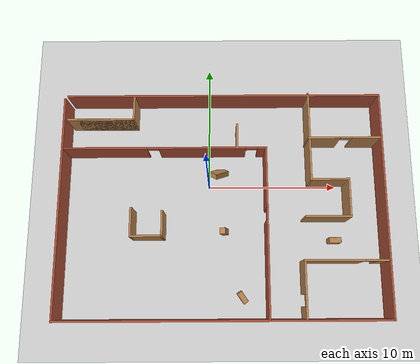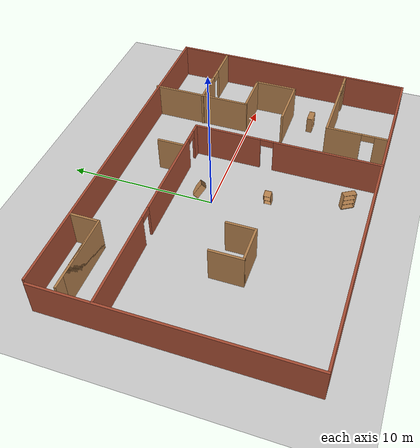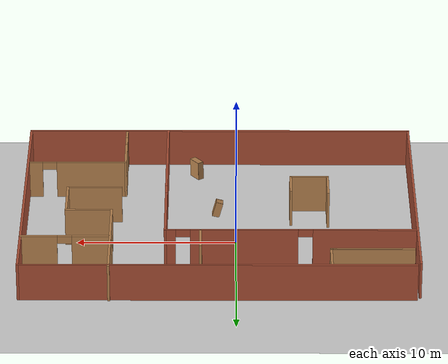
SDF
<sdf version="1.7">
 <world name="default">
  <model name="ground_plane">
   <static>1</static>
   <link name="link">
    <collision name="collision">
     <geometry><plane><normal>0 0 1</normal><size>100 100</size></plane></geometry>
     <surface><friction><ode><mu>100</mu><mu2>50</mu2></ode></friction></surface>
    </collision>
    <visual name="visual">
     <cast_shadows>0</cast_shadows>
     <geometry><plane><normal>0 0 1</normal><size>100 100</size></plane></geometry>
     <material>
      <script><uri>file://media/materials/scripts/gazebo.material</uri><name>Gazebo/Grey</name></script>
     </material>
    </visual>
   </link>
  </model>
  <model name="ego_test_world2">
   <pose>1.0325 -1.59764 0 0 -0 0</pose>
   <link name="Wall_0">
    <collision name="Wall_0_Collision">
     <geometry><box><size>17 0.15 2.5</size></box></geometry>
     <pose>0 0 1.25 0 -0 0</pose>
    </collision>
    <visual name="Wall_0_Visual">
     <pose>0 0 1.25 0 -0 0</pose>
     <geometry><box><size>17 0.15 2.5</size></box></geometry>
     <material>
      <script><uri>file://media/materials/scripts/gazebo.material</uri><name>Gazebo/Bricks</name></script>
      <ambient>1 1 1 1</ambient>
     </material>
     <meta><layer>0</layer></meta>
    </visual>
    <pose>-12.3 -0.180181 0 0 -0 -1.5708</pose>
   </link>
   <link name="Wall_1">
    <collision name="Wall_1_Collision">
     <geometry><box><size>24.75 0.15 2.5</size></box></geometry>
     <pose>0 0 1.25 0 -0 0</pose>
    </collision>
    <visual name="Wall_1_Visual">
     <pose>0 0 1.25 0 -0 0</pose>
     <geometry><box><size>24.75 0.15 2.5</size></box></geometry>
     <material>
      <script><uri>file://media/materials/scripts/gazebo.material</uri><name>Gazebo/Bricks</name></script>
      <ambient>1 1 1 1</ambient>
     </material>
     <meta><layer>0</layer></meta>
    </visual>
    <pose>0 -8.60518 0 0 -0 0</pose>
   </link>
   <link name="Wall_10">
    <pose>-9.42331 6.57633 0 0 -0 0</pose>
    <visual name="Wall_10_Visual_0">
     <pose>0 0 1.25 0 -0 0</pose>
     <geometry><box><size>5.25 0.15 2.5</size></box></geometry>
     <material>
      <script><uri>file://media/materials/scripts/gazebo.material</uri><name>Gazebo/Wood</name></script>
      <ambient>1 1 1 1</ambient>
     </material>
     <meta><layer>0</layer></meta>
    </visual>
    <collision name="Wall_10_Collision_0">
     <geometry><box><size>5.25 0.15 2.5</size></box></geometry>
     <pose>0 0 1.25 0 -0 0</pose>
    </collision>
    <visual name="Wall_10_Visual_1">
     <pose>0.402421 0 1.25 0 -0 0</pose>
     <geometry><box><size>4.44516 0.15 2.5</size></box></geometry>
     <material>
      <script><uri>file://media/materials/scripts/gazebo.material</uri><name>Gazebo/Wood</name></script>
      <ambient>1 1 1 1</ambient>
     </material>
     <meta><layer>0</layer></meta>
    </visual>
    <collision name="Wall_10_Collision_1">
     <geometry><box><size>4.44516 0.15 2.5</size></box></geometry>
     <pose>0.402421 0 1.25 0 -0 0</pose>
    </collision>
   </link>
   <link name="Wall_11">
    <collision name="Wall_11_Collision">
     <geometry><box><size>2 0.15 2.5</size></box></geometry>
     <pose>0 0 1.25 0 -0 0</pose>
    </collision>
    <visual name="Wall_11_Visual">
     <pose>0 0 1.25 0 -0 0</pose>
     <geometry><box><size>2 0.15 2.5</size></box></geometry>
     <material>
      <script><uri>file://media/materials/scripts/gazebo.material</uri><name>Gazebo/Wood</name></script>
      <ambient>1 1 1 1</ambient>
     </material>
     <meta><layer>0</layer></meta>
    </visual>
    <pose>-6.87331 7.50133 0 0 -0 1.5708</pose>
   </link>
   <link name="Wall_13">
    <collision name="Wall_13_Collision">
     <geometry><box><size>7 0.15 2.5</size></box></geometry>
     <pose>0 0 1.25 0 -0 0</pose>
    </collision>
    <visual name="Wall_13_Visual">
     <pose>0 0 1.25 0 -0 0</pose>
     <geometry><box><size>7 0.15 2.5</size></box></geometry>
     <material>
      <script><uri>file://media/materials/scripts/gazebo.material</uri><name>Gazebo/Wood</name></script>
      <ambient>1 1 1 1</ambient>
     </material>
     <meta><layer>0</layer></meta>
    </visual>
    <pose>6.75855 5.18018 0 0 -0 -1.5708</pose>
   </link>
   <link name="Wall_14">
    <collision name="Wall_14_Collision">
     <geometry><box><size>3 0.15 2.5</size></box></geometry>
     <pose>0 0 1.25 0 -0 0</pose>
    </collision>
    <visual name="Wall_14_Visual">
     <pose>0 0 1.25 0 -0 0</pose>
     <geometry><box><size>3 0.15 2.5</size></box></geometry>
     <material>
      <script><uri>file://media/materials/scripts/gazebo.material</uri><name>Gazebo/Wood</name></script>
      <ambient>1 1 1 1</ambient>
     </material>
     <meta><layer>0</layer></meta>
    </visual>
    <pose>8.18355 1.75518 0 0 -0 0</pose>
   </link>
   <link name="Wall_15">
    <collision name="Wall_15_Collision">
     <geometry><box><size>3 0.15 2.5</size></box></geometry>
     <pose>0 0 1.25 0 -0 0</pose>
    </collision>
    <visual name="Wall_15_Visual">
     <pose>0 0 1.25 0 -0 0</pose>
     <geometry><box><size>3 0.15 2.5</size></box></geometry>
     <material>
      <script><uri>file://media/materials/scripts/gazebo.material</uri><name>Gazebo/Wood</name></script>
      <ambient>1 1 1 1</ambient>
     </material>
     <meta><layer>0</layer></meta>
    </visual>
    <pose>9.60855 0.33018 0 0 -0 -1.5708</pose>
   </link>
   <link name="Wall_19">
    <pose>9.48859 5.03721 0 0 -0 0</pose>
    <visual name="Wall_19_Visual_0">
     <pose>-1.61957 0 1.25 0 -0 0</pose>
     <geometry><box><size>2.51086 0.15 2.5</size></box></geometry>
     <material>
      <script><uri>file://media/materials/scripts/gazebo.material</uri><name>Gazebo/Wood</name></script>
      <ambient>1 1 1 1</ambient>
     </material>
     <meta><layer>0</layer></meta>
    </visual>
    <collision name="Wall_19_Collision_0">
     <geometry><box><size>2.51086 0.15 2.5</size></box></geometry>
     <pose>-1.61957 0 1.25 0 -0 0</pose>
    </collision>
    <visual name="Wall_19_Visual_1">
     <pose>1.70543 0 1.25 0 -0 0</pose>
     <geometry><box><size>2.33914 0.15 2.5</size></box></geometry>
     <material>
      <script><uri>file://media/materials/scripts/gazebo.material</uri><name>Gazebo/Wood</name></script>
      <ambient>1 1 1 1</ambient>
     </material>
     <meta><layer>0</layer></meta>
    </visual>
    <collision name="Wall_19_Collision_1">
     <geometry><box><size>2.33914 0.15 2.5</size></box></geometry>
     <pose>1.70543 0 1.25 0 -0 0</pose>
    </collision>
    <visual name="Wall_19_Visual_2">
     <pose>0.08586 0 2.25 0 -0 0</pose>
     <geometry><box><size>0.9 0.15 0.5</size></box></geometry>
     <material>
      <script><uri>file://media/materials/scripts/gazebo.material</uri><name>Gazebo/Wood</name></script>
      <ambient>1 1 1 1</ambient>
     </material>
     <meta><layer>0</layer></meta>
    </visual>
    <collision name="Wall_19_Collision_2">
     <geometry><box><size>0.9 0.15 0.5</size></box></geometry>
     <pose>0.08586 0 2.25 0 -0 0</pose>
    </collision>
   </link>
   <link name="Wall_2">
    <collision name="Wall_2_Collision">
     <geometry><box><size>17.25 0.15 2.5</size></box></geometry>
     <pose>0 0 1.25 0 -0 0</pose>
    </collision>
    <visual name="Wall_2_Visual">
     <pose>0 0 1.25 0 -0 0</pose>
     <geometry><box><size>17.25 0.15 2.5</size></box></geometry>
     <material>
      <script><uri>file://media/materials/scripts/gazebo.material</uri><name>Gazebo/Bricks</name></script>
      <ambient>1 1 1 1</ambient>
     </material>
     <meta><layer>0</layer></meta>
    </visual>
    <pose>12.3 -0.055181 0 0 -0 1.5708</pose>
   </link>
   <link name="Wall_21">
    <collision name="Wall_21_Collision">
     <geometry><box><size>3.5 0.15 2.5</size></box></geometry>
     <pose>0 0 1.25 0 -0 0</pose>
    </collision>
    <visual name="Wall_21_Visual">
     <pose>0 0 1.25 0 -0 0</pose>
     <geometry><box><size>3.5 0.15 2.5</size></box></geometry>
     <material>
      <script><uri>file://media/materials/scripts/gazebo.material</uri><name>Gazebo/Wood</name></script>
      <ambient>1 1 1 1</ambient>
     </material>
     <meta><layer>0</layer></meta>
    </visual>
    <pose>7.93355 -1.09482 0 0 -0 3.14159</pose>
   </link>
   <link name="Wall_23">
    <pose>6.04145 -6.39763 0 0 -0 1.5708</pose>
    <visual name="Wall_23_Visual_0">
     <pose>-1.6916 0 1.25 0 -0 0</pose>
     <geometry><box><size>0.866794 0.15 2.5</size></box></geometry>
     <material>
      <script><uri>file://media/materials/scripts/gazebo.material</uri><name>Gazebo/Wood</name></script>
      <ambient>1 1 1 1</ambient>
     </material>
     <meta><layer>0</layer></meta>
    </visual>
    <collision name="Wall_23_Collision_0">
     <geometry><box><size>0.866794 0.15 2.5</size></box></geometry>
     <pose>-1.6916 0 1.25 0 -0 0</pose>
    </collision>
    <visual name="Wall_23_Visual_1">
     <pose>0.883397 0 1.25 0 -0 0</pose>
     <geometry><box><size>2.48321 0.15 2.5</size></box></geometry>
     <material>
      <script><uri>file://media/materials/scripts/gazebo.material</uri><name>Gazebo/Wood</name></script>
      <ambient>1 1 1 1</ambient>
     </material>
     <meta><layer>0</layer></meta>
    </visual>
    <collision name="Wall_23_Collision_1">
     <geometry><box><size>2.48321 0.15 2.5</size></box></geometry>
     <pose>0.883397 0 1.25 0 -0 0</pose>
    </collision>
    <visual name="Wall_23_Visual_2">
     <pose>-0.808206 0 2.25 0 -0 0</pose>
     <geometry><box><size>0.9 0.15 0.5</size></box></geometry>
     <material>
      <script><uri>file://media/materials/scripts/gazebo.material</uri><name>Gazebo/Wood</name></script>
      <ambient>1 1 1 1</ambient>
     </material>
     <meta><layer>0</layer></meta>
    </visual>
    <collision name="Wall_23_Collision_2">
     <geometry><box><size>0.9 0.15 0.5</size></box></geometry>
     <pose>-0.808206 0 2.25 0 -0 0</pose>
    </collision>
   </link>
   <link name="Wall_24">
    <pose>9.09145 -4.34763 0 0 -0 0</pose>
    <visual name="Wall_24_Visual_0">
     <pose>-0.872636 0 1.25 0 -0 0</pose>
     <geometry><box><size>4.50473 0.15 2.5</size></box></geometry>
     <material>
      <script><uri>file://media/materials/scripts/gazebo.material</uri><name>Gazebo/Wood</name></script>
      <ambient>1 1 1 1</ambient>
     </material>
     <meta><layer>0</layer></meta>
    </visual>
    <collision name="Wall_24_Collision_0">
     <geometry><box><size>4.50473 0.15 2.5</size></box></geometry>
     <pose>-0.872636 0 1.25 0 -0 0</pose>
    </collision>
    <visual name="Wall_24_Visual_1">
     <pose>2.70236 0 1.25 0 -0 0</pose>
     <geometry><box><size>0.845273 0.15 2.5</size></box></geometry>
     <material>
      <script><uri>file://media/materials/scripts/gazebo.material</uri><name>Gazebo/Wood</name></script>
      <ambient>1 1 1 1</ambient>
     </material>
     <meta><layer>0</layer></meta>
    </visual>
    <collision name="Wall_24_Collision_1">
     <geometry><box><size>0.845273 0.15 2.5</size></box></geometry>
     <pose>2.70236 0 1.25 0 -0 0</pose>
    </collision>
    <visual name="Wall_24_Visual_2">
     <pose>1.82973 0 2.25 0 -0 0</pose>
     <geometry><box><size>0.9 0.15 0.5</size></box></geometry>
     <material>
      <script><uri>file://media/materials/scripts/gazebo.material</uri><name>Gazebo/Wood</name></script>
      <ambient>1 1 1 1</ambient>
     </material>
     <meta><layer>0</layer></meta>
    </visual>
    <collision name="Wall_24_Collision_2">
     <geometry><box><size>0.9 0.15 0.5</size></box></geometry>
     <pose>1.82973 0 2.25 0 -0 0</pose>
    </collision>
   </link>
   <link name="Wall_26">
    <collision name="Wall_26_Collision">
     <geometry><box><size>2 0.15 2.5</size></box></geometry>
     <pose>0 0 1.25 0 -0 0</pose>
    </collision>
    <visual name="Wall_26_Visual">
     <pose>0 0 1.25 0 -0 0</pose>
     <geometry><box><size>2 0.15 2.5</size></box></geometry>
     <material>
      <script><uri>file://media/materials/scripts/gazebo.material</uri><name>Gazebo/Wood</name></script>
      <ambient>1 1 1 1</ambient>
     </material>
     <meta><layer>0</layer></meta>
    </visual>
    <pose>1.16173 5.19264 0 0 -0 1.5708</pose>
   </link>
   <link name="Wall_28">
    <collision name="Wall_28_Collision">
     <geometry><box><size>2.25 0.15 2.5</size></box></geometry>
     <pose>0 0 1.25 0 -0 0</pose>
    </collision>
    <visual name="Wall_28_Visual">
     <pose>0 0 1.25 0 -0 0</pose>
     <geometry><box><size>2.25 0.15 2.5</size></box></geometry>
     <material>
      <script><uri>file://media/materials/scripts/gazebo.material</uri><name>Gazebo/Wood</name></script>
      <ambient>1 1 1 1</ambient>
     </material>
     <meta><layer>0</layer></meta>
    </visual>
    <pose>-6.8837 -1.4522 0 0 -0 -1.5708</pose>
   </link>
   <link name="Wall_29">
    <collision name="Wall_29_Collision">
     <geometry><box><size>2.5 0.15 2.5</size></box></geometry>
     <pose>0 0 1.25 0 -0 0</pose>
    </collision>
    <visual name="Wall_29_Visual">
     <pose>0 0 1.25 0 -0 0</pose>
     <geometry><box><size>2.5 0.15 2.5</size></box></geometry>
     <material>
      <script><uri>file://media/materials/scripts/gazebo.material</uri><name>Gazebo/Wood</name></script>
      <ambient>1 1 1 1</ambient>
     </material>
     <meta><layer>0</layer></meta>
    </visual>
    <pose>-5.7087 -2.5022 0 0 -0 0</pose>
   </link>
   <link name="Wall_3">
    <collision name="Wall_3_Collision">
     <geometry><box><size>24.5 0.15 2.5</size></box></geometry>
     <pose>0 0 1.25 0 -0 0</pose>
    </collision>
    <visual name="Wall_3_Visual">
     <pose>0 0 1.25 0 -0 0</pose>
     <geometry><box><size>24.5 0.15 2.5</size></box></geometry>
     <material>
      <script><uri>file://media/materials/scripts/gazebo.material</uri><name>Gazebo/Bricks</name></script>
      <ambient>1 1 1 1</ambient>
     </material>
     <meta><layer>0</layer></meta>
    </visual>
    <pose>0.125 8.49482 0 0 -0 3.14159</pose>
   </link>
   <link name="Wall_30">
    <collision name="Wall_30_Collision">
     <geometry><box><size>2 0.15 2.5</size></box></geometry>
     <pose>0 0 1.25 0 -0 0</pose>
    </collision>
    <visual name="Wall_30_Visual">
     <pose>0 0 1.25 0 -0 0</pose>
     <geometry><box><size>2 0.15 2.5</size></box></geometry>
     <material>
      <script><uri>file://media/materials/scripts/gazebo.material</uri><name>Gazebo/Wood</name></script>
      <ambient>1 1 1 1</ambient>
     </material>
     <meta><layer>0</layer></meta>
    </visual>
    <pose>-4.5337 -1.5772 0 0 -0 1.5708</pose>
   </link>
   <link name="Wall_7">
    <pose>-4.43566 4.25016 0 0 -0 0</pose>
    <visual name="Wall_7_Visual_0">
     <pose>-4.61696 0 1.25 0 -0 0</pose>
     <geometry><box><size>6.51609 0.15 2.5</size></box></geometry>
     <material>
      <script><uri>file://media/materials/scripts/gazebo.material</uri><name>Gazebo/Bricks</name></script>
      <ambient>1 1 1 1</ambient>
     </material>
     <meta><layer>0</layer></meta>
    </visual>
    <collision name="Wall_7_Collision_0">
     <geometry><box><size>6.51609 0.15 2.5</size></box></geometry>
     <pose>-4.61696 0 1.25 0 -0 0</pose>
    </collision>
    <visual name="Wall_7_Visual_1">
     <pose>2.89517 0 1.25 0 -0 0</pose>
     <geometry><box><size>6.70818 0.15 2.5</size></box></geometry>
     <material>
      <script><uri>file://media/materials/scripts/gazebo.material</uri><name>Gazebo/Bricks</name></script>
      <ambient>1 1 1 1</ambient>
     </material>
     <meta><layer>0</layer></meta>
    </visual>
    <collision name="Wall_7_Collision_1">
     <geometry><box><size>6.70818 0.15 2.5</size></box></geometry>
     <pose>2.89517 0 1.25 0 -0 0</pose>
    </collision>
    <visual name="Wall_7_Visual_2">
     <pose>7.51213 0 1.25 0 -0 0</pose>
     <geometry><box><size>0.725738 0.15 2.5</size></box></geometry>
     <material>
      <script><uri>file://media/materials/scripts/gazebo.material</uri><name>Gazebo/Bricks</name></script>
      <ambient>1 1 1 1</ambient>
     </material>
     <meta><layer>0</layer></meta>
    </visual>
    <collision name="Wall_7_Collision_2">
     <geometry><box><size>0.725738 0.15 2.5</size></box></geometry>
     <pose>7.51213 0 1.25 0 -0 0</pose>
    </collision>
    <visual name="Wall_7_Visual_3">
     <pose>-0.908915 0 2.25 0 -0 0</pose>
     <geometry><box><size>0.9 0.15 0.5</size></box></geometry>
     <material>
      <script><uri>file://media/materials/scripts/gazebo.material</uri><name>Gazebo/Bricks</name></script>
      <ambient>1 1 1 1</ambient>
     </material>
     <meta><layer>0</layer></meta>
    </visual>
    <collision name="Wall_7_Collision_3">
     <geometry><box><size>0.9 0.15 0.5</size></box></geometry>
     <pose>-0.908915 0 2.25 0 -0 0</pose>
    </collision>
    <visual name="Wall_7_Visual_4">
     <pose>6.69926 0 2.25 0 -0 0</pose>
     <geometry><box><size>0.9 0.15 0.5</size></box></geometry>
     <material>
      <script><uri>file://media/materials/scripts/gazebo.material</uri><name>Gazebo/Bricks</name></script>
      <ambient>1 1 1 1</ambient>
     </material>
     <meta><layer>0</layer></meta>
    </visual>
    <collision name="Wall_7_Collision_4">
     <geometry><box><size>0.9 0.15 0.5</size></box></geometry>
     <pose>6.69926 0 2.25 0 -0 0</pose>
    </collision>
   </link>
   <link name="Wall_8">
    <pose>3.36434 -2.17484 0 0 -0 -1.5708</pose>
    <visual name="Wall_8_Visual_0">
     <pose>-4.1427 0 1.25 0 -0 0</pose>
     <geometry><box><size>4.71461 0.15 2.5</size></box></geometry>
     <material>
      <script><uri>file://media/materials/scripts/gazebo.material</uri><name>Gazebo/Bricks</name></script>
      <ambient>1 1 1 1</ambient>
     </material>
     <meta><layer>0</layer></meta>
    </visual>
    <collision name="Wall_8_Collision_0">
     <geometry><box><size>4.71461 0.15 2.5</size></box></geometry>
     <pose>-4.1427 0 1.25 0 -0 0</pose>
    </collision>
    <visual name="Wall_8_Visual_1">
     <pose>2.8073 0 1.25 0 -0 0</pose>
     <geometry><box><size>7.38539 0.15 2.5</size></box></geometry>
     <material>
      <script><uri>file://media/materials/scripts/gazebo.material</uri><name>Gazebo/Bricks</name></script>
      <ambient>1 1 1 1</ambient>
     </material>
     <meta><layer>0</layer></meta>
    </visual>
    <collision name="Wall_8_Collision_1">
     <geometry><box><size>7.38539 0.15 2.5</size></box></geometry>
     <pose>2.8073 0 1.25 0 -0 0</pose>
    </collision>
    <visual name="Wall_8_Visual_2">
     <pose>-1.33539 0 2.25 0 -0 0</pose>
     <geometry><box><size>0.9 0.15 0.5</size></box></geometry>
     <material>
      <script><uri>file://media/materials/scripts/gazebo.material</uri><name>Gazebo/Bricks</name></script>
      <ambient>1 1 1 1</ambient>
     </material>
     <meta><layer>0</layer></meta>
    </visual>
    <collision name="Wall_8_Collision_2">
     <geometry><box><size>0.9 0.15 0.5</size></box></geometry>
     <pose>-1.33539 0 2.25 0 -0 0</pose>
    </collision>
   </link>
   <static>1</static>
  </model>
  <model name="cabinet_2">
   <static>1</static>
   <link name="cabinet_bottom_plate">
    <inertial>
     <pose>0 0 -1 0 -0 0</pose>
     <inertia><ixx>2.05</ixx><ixy>0</ixy><ixz>0</ixz><iyy>2.05</iyy><iyz>0</iyz><izz>2.05</izz></inertia>
     <mass>25</mass>
    </inertial>
    <collision name="cabinet_bottom_plate_geom">
     <pose>0 0 0.01 0 -0 0</pose>
     <geometry><box><size>0.45 0.45 0.02</size></box></geometry>
    </collision>
    <visual name="cabinet_bottom_plate_geom_visual">
     <pose>0 0 0.01 0 -0 0</pose>
     <geometry><box><size>0.45 0.45 0.02</size></box></geometry>
     <material>
      <script><uri>file://media/materials/scripts/gazebo.material</uri><name>Gazebo/Wood</name></script>
     </material>
    </visual>
    <collision name="cabinet_bottom_plate_geom_cabinet_back_plate">
     <pose>0.235 0 0.51 0 -0 0</pose>
     <geometry><box><size>0.02 0.45 1.02</size></box></geometry>
    </collision>
    <visual name="cabinet_bottom_plate_geom_cabinet_back_plate_visual">
     <pose>0.235 0 0.51 0 -0 0</pose>
     <geometry><box><size>0.02 0.45 1.02</size></box></geometry>
     <material>
      <script><uri>file://media/materials/scripts/gazebo.material</uri><name>Gazebo/Wood</name></script>
     </material>
    </visual>
    <collision name="cabinet_bottom_plate_geom_cabinet_left_plate">
     <pose>0 0.235 0.51 0 -0 0</pose>
     <geometry><box><size>0.45 0.02 1.02</size></box></geometry>
    </collision>
    <visual name="cabinet_bottom_plate_geom_cabinet_left_plate_visual">
     <pose>0 0.235 0.51 0 -0 0</pose>
     <geometry><box><size>0.45 0.02 1.02</size></box></geometry>
     <material>
      <script><uri>file://media/materials/scripts/gazebo.material</uri><name>Gazebo/Wood</name></script>
     </material>
    </visual>
    <collision name="cabinet_bottom_plate_geom_cabinet_middle_plate">
     <pose>0 0 0.51 0 -0 0</pose>
     <geometry><box><size>0.45 0.45 0.02</size></box></geometry>
    </collision>
    <visual name="cabinet_bottom_plate_geom_cabinet_middle_plate_visual">
     <pose>0 0 0.51 0 -0 0</pose>
     <geometry><box><size>0.45 0.45 0.02</size></box></geometry>
     <material>
      <script><uri>file://media/materials/scripts/gazebo.material</uri><name>Gazebo/Wood</name></script>
     </material>
    </visual>
    <collision name="cabinet_bottom_plate_geom_cabinet_right_plate">
     <pose>0 -0.235 0.51 0 -0 0</pose>
     <geometry><box><size>0.45 0.02 1.02</size></box></geometry>
    </collision>
    <visual name="cabinet_bottom_plate_geom_cabinet_right_plate_visual">
     <pose>0 -0.235 0.51 0 -0 0</pose>
     <geometry><box><size>0.45 0.02 1.02</size></box></geometry>
     <material>
      <script><uri>file://media/materials/scripts/gazebo.material</uri><name>Gazebo/Wood</name></script>
     </material>
    </visual>
    <collision name="cabinet_bottom_plate_geom_cabinet_top_plate">
     <pose>0 0 1.01 0 -0 0</pose>
     <geometry><box><size>0.45 0.45 0.02</size></box></geometry>
    </collision>
    <visual name="cabinet_bottom_plate_geom_cabinet_top_plate_visual">
     <pose>0 0 1.01 0 -0 0</pose>
     <geometry><box><size>0.45 0.45 0.02</size></box></geometry>
     <material>
      <script><uri>file://media/materials/scripts/gazebo.material</uri><name>Gazebo/Wood</name></script>
     </material>
    </visual>
   </link>
   <pose>1.27456 -3.53716 0 0 -0.260529 0</pose>
  </model>
  <model name="bookshelf_0">
   <static>1</static>
   <link name="link">
    <inertial><mass>1</mass></inertial>
    <collision name="back">
     <pose>0 0.005 0.6 0 -0 0</pose>
     <geometry><box><size>0.9 0.01 1.2</size></box></geometry>
    </collision>
    <visual name="visual1">
     <pose>0 0.005 0.6 0 -0 0</pose>
     <geometry><box><size>0.9 0.01 1.2</size></box></geometry>
     <material>
      <script><uri>file://media/materials/scripts/gazebo.material</uri><name>Gazebo/Wood</name></script>
     </material>
    </visual>
    <collision name="left_side">
     <pose>0.45 -0.195 0.6 0 -0 0</pose>
     <geometry><box><size>0.02 0.4 1.2</size></box></geometry>
    </collision>
    <visual name="visual2">
     <pose>0.45 -0.195 0.6 0 -0 0</pose>
     <geometry><box><size>0.02 0.4 1.2</size></box></geometry>
     <material>
      <script><uri>file://media/materials/scripts/gazebo.material</uri><name>Gazebo/Wood</name></script>
     </material>
    </visual>
    <collision name="right_side">
     <pose>-0.45 -0.195 0.6 0 -0 0</pose>
     <geometry><box><size>0.02 0.4 1.2</size></box></geometry>
    </collision>
    <visual name="visual3">
     <pose>-0.45 -0.195 0.6 0 -0 0</pose>
     <geometry><box><size>0.02 0.4 1.2</size></box></geometry>
     <material>
      <script><uri>file://media/materials/scripts/gazebo.material</uri><name>Gazebo/Wood</name></script>
     </material>
    </visual>
    <collision name="bottom">
     <pose>0 -0.195 0.03 0 -0 0</pose>
     <geometry><box><size>0.88 0.4 0.06</size></box></geometry>
    </collision>
    <visual name="visual4">
     <pose>0 -0.195 0.03 0 -0 0</pose>
     <geometry><box><size>0.88 0.4 0.06</size></box></geometry>
     <material>
      <script><uri>file://media/materials/scripts/gazebo.material</uri><name>Gazebo/Wood</name></script>
     </material>
    </visual>
    <collision name="top">
     <pose>0 -0.195 1.19 0 -0 0</pose>
     <geometry><box><size>0.88 0.4 0.02</size></box></geometry>
    </collision>
    <visual name="visual5">
     <pose>0 -0.195 1.19 0 -0 0</pose>
     <geometry><box><size>0.88 0.4 0.02</size></box></geometry>
     <material>
      <script><uri>file://media/materials/scripts/gazebo.material</uri><name>Gazebo/Wood</name></script>
     </material>
    </visual>
    <collision name="low_shelf">
     <pose>0 -0.195 0.43 0 -0 0</pose>
     <geometry><box><size>0.88 0.4 0.02</size></box></geometry>
    </collision>
    <visual name="visual6">
     <pose>0 -0.195 0.43 0 -0 0</pose>
     <geometry><box><size>0.88 0.4 0.02</size></box></geometry>
     <material>
      <script><uri>file://media/materials/scripts/gazebo.material</uri><name>Gazebo/Wood</name></script>
     </material>
    </visual>
    <collision name="high_shelf">
     <pose>0 -0.195 0.8 0 -0 0</pose>
     <geometry><box><size>0.88 0.4 0.02</size></box></geometry>
    </collision>
    <visual name="visual7">
     <pose>0 -0.195 0.8 0 -0 0</pose>
     <geometry><box><size>0.88 0.4 0.02</size></box></geometry>
     <material>
      <script><uri>file://media/materials/scripts/gazebo.material</uri><name>Gazebo/Wood</name></script>
     </material>
    </visual>
   </link>
   <pose>1.25978 1.52448 0 0.872113 -0.731247 -0.641447</pose>
  </model>
  <model name="bookshelf_1">
   <static>1</static>
   <link name="link">
    <inertial><mass>1</mass></inertial>
    <collision name="back">
     <pose>0 0.005 0.6 0 -0 0</pose>
     <geometry><box><size>0.9 0.01 1.2</size></box></geometry>
    </collision>
    <visual name="visual1">
     <pose>0 0.005 0.6 0 -0 0</pose>
     <geometry><box><size>0.9 0.01 1.2</size></box></geometry>
     <material>
      <script><uri>file://media/materials/scripts/gazebo.material</uri><name>Gazebo/Wood</name></script>
     </material>
    </visual>
    <collision name="left_side">
     <pose>0.45 -0.195 0.6 0 -0 0</pose>
     <geometry><box><size>0.02 0.4 1.2</size></box></geometry>
    </collision>
    <visual name="visual2">
     <pose>0.45 -0.195 0.6 0 -0 0</pose>
     <geometry><box><size>0.02 0.4 1.2</size></box></geometry>
     <material>
      <script><uri>file://media/materials/scripts/gazebo.material</uri><name>Gazebo/Wood</name></script>
     </material>
    </visual>
    <collision name="right_side">
     <pose>-0.45 -0.195 0.6 0 -0 0</pose>
     <geometry><box><size>0.02 0.4 1.2</size></box></geometry>
    </collision>
    <visual name="visual3">
     <pose>-0.45 -0.195 0.6 0 -0 0</pose>
     <geometry><box><size>0.02 0.4 1.2</size></box></geometry>
     <material>
      <script><uri>file://media/materials/scripts/gazebo.material</uri><name>Gazebo/Wood</name></script>
     </material>
    </visual>
    <collision name="bottom">
     <pose>0 -0.195 0.03 0 -0 0</pose>
     <geometry><box><size>0.88 0.4 0.06</size></box></geometry>
    </collision>
    <visual name="visual4">
     <pose>0 -0.195 0.03 0 -0 0</pose>
     <geometry><box><size>0.88 0.4 0.06</size></box></geometry>
     <material>
      <script><uri>file://media/materials/scripts/gazebo.material</uri><name>Gazebo/Wood</name></script>
     </material>
    </visual>
    <collision name="top">
     <pose>0 -0.195 1.19 0 -0 0</pose>
     <geometry><box><size>0.88 0.4 0.02</size></box></geometry>
    </collision>
    <visual name="visual5">
     <pose>0 -0.195 1.19 0 -0 0</pose>
     <geometry><box><size>0.88 0.4 0.02</size></box></geometry>
     <material>
      <script><uri>file://media/materials/scripts/gazebo.material</uri><name>Gazebo/Wood</name></script>
     </material>
    </visual>
    <collision name="low_shelf">
     <pose>0 -0.195 0.43 0 -0 0</pose>
     <geometry><box><size>0.88 0.4 0.02</size></box></geometry>
    </collision>
    <visual name="visual6">
     <pose>0 -0.195 0.43 0 -0 0</pose>
     <geometry><box><size>0.88 0.4 0.02</size></box></geometry>
     <material>
      <script><uri>file://media/materials/scripts/gazebo.material</uri><name>Gazebo/Wood</name></script>
     </material>
    </visual>
    <collision name="high_shelf">
     <pose>0 -0.195 0.8 0 -0 0</pose>
     <geometry><box><size>0.88 0.4 0.02</size></box></geometry>
    </collision>
    <visual name="visual7">
     <pose>0 -0.195 0.8 0 -0 0</pose>
     <geometry><box><size>0.88 0.4 0.02</size></box></geometry>
     <material>
      <script><uri>file://media/materials/scripts/gazebo.material</uri><name>Gazebo/Wood</name></script>
     </material>
    </visual>
   </link>
   <pose>2.65365 -8.41096 0 -0 0.063079 -0.965472</pose>
  </model>
  <model name="bookshelf_6">
   <static>1</static>
   <link name="link">
    <inertial><mass>1</mass></inertial>
    <collision name="back">
     <pose>0 0.005 0.6 0 -0 0</pose>
     <geometry><box><size>0.9 0.01 1.2</size></box></geometry>
    </collision>
    <visual name="visual1">
     <pose>0 0.005 0.6 0 -0 0</pose>
     <geometry><box><size>0.9 0.01 1.2</size></box></geometry>
     <material>
      <script><uri>file://media/materials/scripts/gazebo.material</uri><name>Gazebo/Wood</name></script>
     </material>
    </visual>
    <collision name="left_side">
     <pose>0.45 -0.195 0.6 0 -0 0</pose>
     <geometry><box><size>0.02 0.4 1.2</size></box></geometry>
    </collision>
    <visual name="visual2">
     <pose>0.45 -0.195 0.6 0 -0 0</pose>
     <geometry><box><size>0.02 0.4 1.2</size></box></geometry>
     <material>
      <script><uri>file://media/materials/scripts/gazebo.material</uri><name>Gazebo/Wood</name></script>
     </material>
    </visual>
    <collision name="right_side">
     <pose>-0.45 -0.195 0.6 0 -0 0</pose>
     <geometry><box><size>0.02 0.4 1.2</size></box></geometry>
    </collision>
    <visual name="visual3">
     <pose>-0.45 -0.195 0.6 0 -0 0</pose>
     <geometry><box><size>0.02 0.4 1.2</size></box></geometry>
     <material>
      <script><uri>file://media/materials/scripts/gazebo.material</uri><name>Gazebo/Wood</name></script>
     </material>
    </visual>
    <collision name="bottom">
     <pose>0 -0.195 0.03 0 -0 0</pose>
     <geometry><box><size>0.88 0.4 0.06</size></box></geometry>
    </collision>
    <visual name="visual4">
     <pose>0 -0.195 0.03 0 -0 0</pose>
     <geometry><box><size>0.88 0.4 0.06</size></box></geometry>
     <material>
      <script><uri>file://media/materials/scripts/gazebo.material</uri><name>Gazebo/Wood</name></script>
     </material>
    </visual>
    <collision name="top">
     <pose>0 -0.195 1.19 0 -0 0</pose>
     <geometry><box><size>0.88 0.4 0.02</size></box></geometry>
    </collision>
    <visual name="visual5">
     <pose>0 -0.195 1.19 0 -0 0</pose>
     <geometry><box><size>0.88 0.4 0.02</size></box></geometry>
     <material>
      <script><uri>file://media/materials/scripts/gazebo.material</uri><name>Gazebo/Wood</name></script>
     </material>
    </visual>
    <collision name="low_shelf">
     <pose>0 -0.195 0.43 0 -0 0</pose>
     <geometry><box><size>0.88 0.4 0.02</size></box></geometry>
    </collision>
    <visual name="visual6">
     <pose>0 -0.195 0.43 0 -0 0</pose>
     <geometry><box><size>0.88 0.4 0.02</size></box></geometry>
     <material>
      <script><uri>file://media/materials/scripts/gazebo.material</uri><name>Gazebo/Wood</name></script>
     </material>
    </visual>
    <collision name="high_shelf">
     <pose>0 -0.195 0.8 0 -0 0</pose>
     <geometry><box><size>0.88 0.4 0.02</size></box></geometry>
    </collision>
    <visual name="visual7">
     <pose>0 -0.195 0.8 0 -0 0</pose>
     <geometry><box><size>0.88 0.4 0.02</size></box></geometry>
     <material>
      <script><uri>file://media/materials/scripts/gazebo.material</uri><name>Gazebo/Wood</name></script>
     </material>
    </visual>
   </link>
   <pose>9.62372 -4.1215 0 0 -0 0</pose>
  </model>
 </world>
</sdf>
